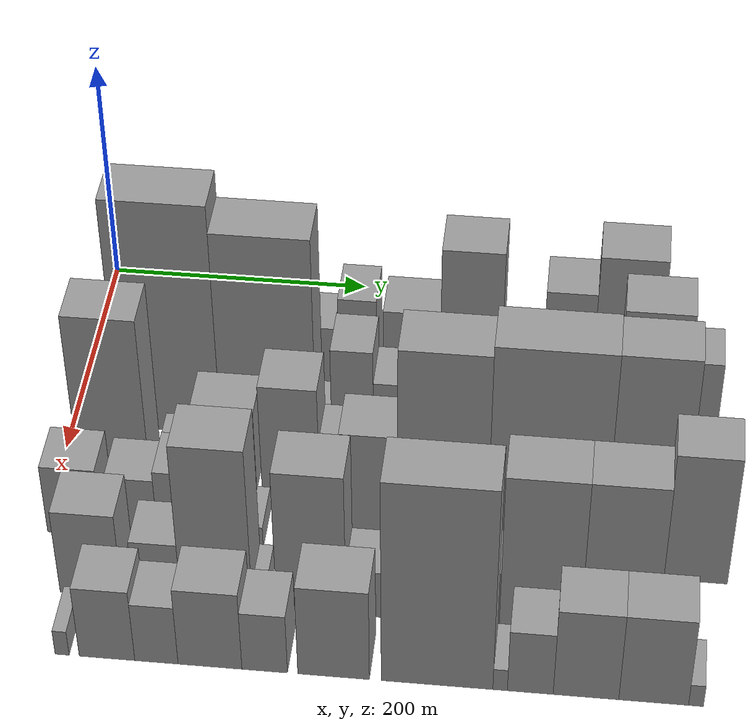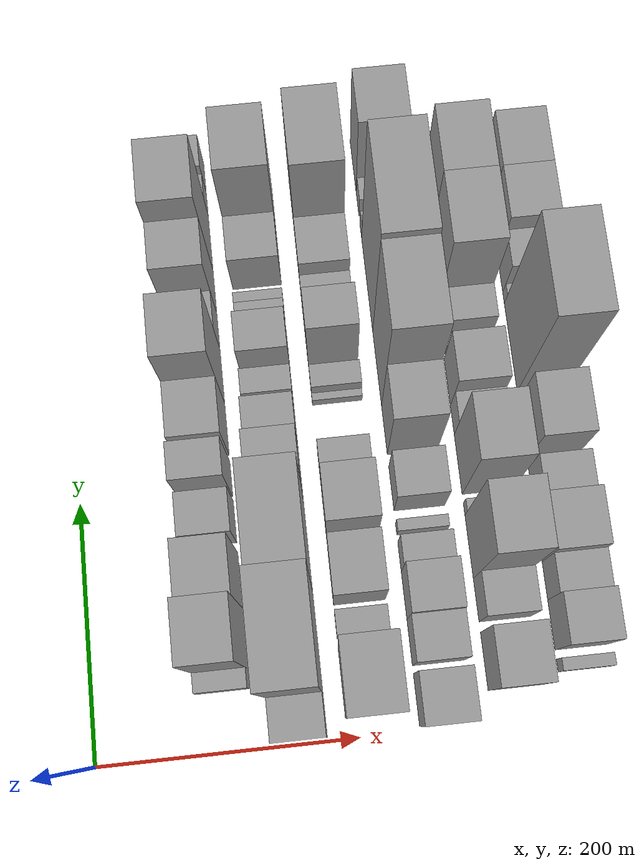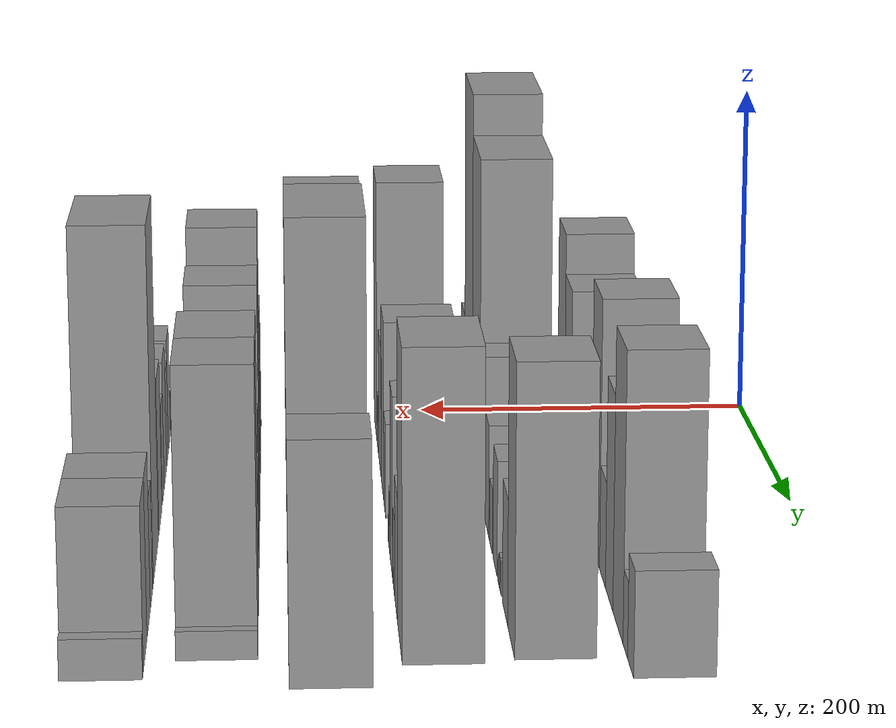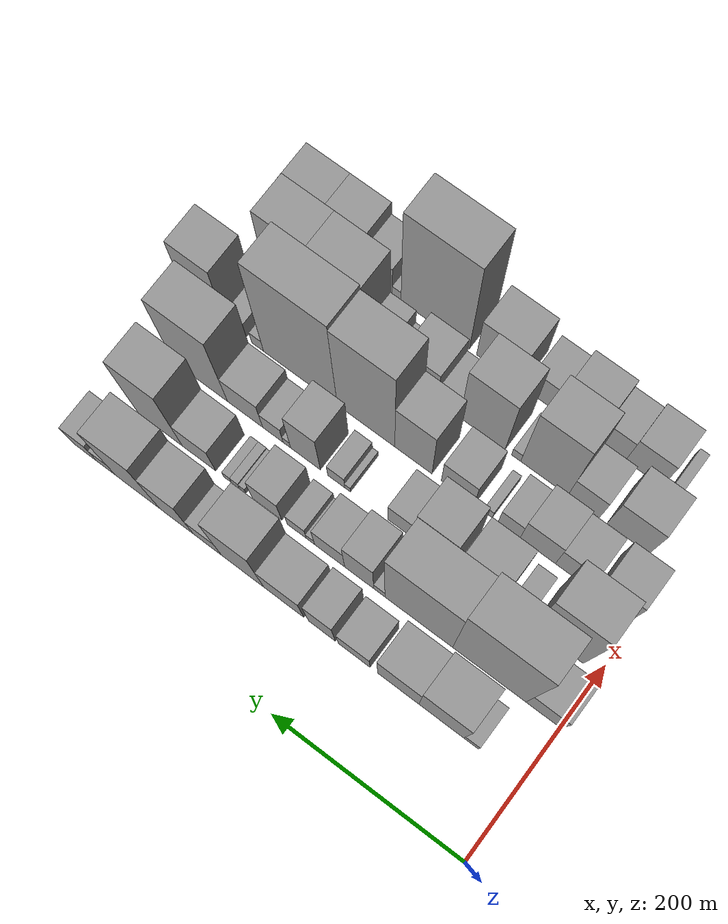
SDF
<sdf version="1.6">
 <world name="default">
  <model name="building_29">
   <static>1</static>
   <pose>100.0000 52.5139 0 0.000000 0.000000 0.000000</pose>
   <link name="link">
    <pose>0 0 15.00 0 0 0</pose>
    <collision name="collision"><geometry><box><size>40.0000 15.1052 30.0000</size></box></geometry></collision>
    <visual name="visual">
     <cast_shadows>0</cast_shadows>
     <geometry><box><size>40.0000 15.1052 30.0000</size></box></geometry>
     <material>
      <script>
       <uri>model://grey_wall/materials/scripts</uri>
       <uri>model://grey_wall/materials/textures</uri>
       <name>vrc/grey_wall</name>
      </script>
     </material>
    </visual>
   </link>
  </model>
  <model name="building_30">
   <static>1</static>
   <pose>100.0000 83.0617 0 0.000000 0.000000 0.000000</pose>
   <link name="link">
    <pose>0 0 67.50 0 0 0</pose>
    <collision name="collision"><geometry><box><size>40.0000 45.9904 135.0000</size></box></geometry></collision>
    <visual name="visual">
     <cast_shadows>0</cast_shadows>
     <geometry><box><size>40.0000 45.9904 135.0000</size></box></geometry>
     <material>
      <script>
       <uri>model://grey_wall/materials/scripts</uri>
       <uri>model://grey_wall/materials/textures</uri>
       <name>vrc/grey_wall</name>
      </script>
     </material>
    </visual>
   </link>
  </model>
  <model name="building_31">
   <static>1</static>
   <pose>100.0000 127.6087 0 0.000000 0.000000 0.000000</pose>
   <link name="link">
    <pose>0 0 55.50 0 0 0</pose>
    <collision name="collision"><geometry><box><size>40.0000 43.1036 111.0000</size></box></geometry></collision>
    <visual name="visual">
     <cast_shadows>0</cast_shadows>
     <geometry><box><size>40.0000 43.1036 111.0000</size></box></geometry>
     <material>
      <script>
       <uri>model://grey_wall/materials/scripts</uri>
       <uri>model://grey_wall/materials/textures</uri>
       <name>vrc/grey_wall</name>
      </script>
     </material>
    </visual>
   </link>
  </model>
  <model name="building_32">
   <static>1</static>
   <pose>100.0000 173.8281 0 0.000000 0.000000 0.000000</pose>
   <link name="link">
    <pose>0 0 31.50 0 0 0</pose>
    <collision name="collision"><geometry><box><size>40.0000 33.3352 63.0000</size></box></geometry></collision>
    <visual name="visual">
     <cast_shadows>0</cast_shadows>
     <geometry><box><size>40.0000 33.3352 63.0000</size></box></geometry>
     <material>
      <script>
       <uri>model://grey_wall/materials/scripts</uri>
       <uri>model://grey_wall/materials/textures</uri>
       <name>vrc/grey_wall</name>
      </script>
     </material>
    </visual>
   </link>
  </model>
  <model name="building_33">
   <static>1</static>
   <pose>100.0000 207.8353 0 0.000000 0.000000 0.000000</pose>
   <link name="link">
    <pose>0 0 46.50 0 0 0</pose>
    <collision name="collision"><geometry><box><size>40.0000 28.6792 93.0000</size></box></geometry></collision>
    <visual name="visual">
     <cast_shadows>0</cast_shadows>
     <geometry><box><size>40.0000 28.6792 93.0000</size></box></geometry>
     <material>
      <script>
       <uri>model://grey_wall/materials/scripts</uri>
       <uri>model://grey_wall/materials/textures</uri>
       <name>vrc/grey_wall</name>
      </script>
     </material>
    </visual>
   </link>
  </model>
  <model name="building_34">
   <static>1</static>
   <pose>100.0000 248.5474 0 0.000000 0.000000 0.000000</pose>
   <link name="link">
    <pose>0 0 42.00 0 0 0</pose>
    <collision name="collision"><geometry><box><size>40.0000 42.7449 84.0000</size></box></geometry></collision>
    <visual name="visual">
     <cast_shadows>0</cast_shadows>
     <geometry><box><size>40.0000 42.7449 84.0000</size></box></geometry>
     <material>
      <script>
       <uri>model://grey_wall/materials/scripts</uri>
       <uri>model://grey_wall/materials/textures</uri>
       <name>vrc/grey_wall</name>
      </script>
     </material>
    </visual>
   </link>
  </model>
  <model name="building_35">
   <static>1</static>
   <pose>100.0000 292.8291 0 0.000000 0.000000 0.000000</pose>
   <link name="link">
    <pose>0 0 73.50 0 0 0</pose>
    <collision name="collision"><geometry><box><size>40.0000 45.8186 147.0000</size></box></geometry></collision>
    <visual name="visual">
     <cast_shadows>0</cast_shadows>
     <geometry><box><size>40.0000 45.8186 147.0000</size></box></geometry>
     <material>
      <script>
       <uri>model://grey_wall/materials/scripts</uri>
       <uri>model://grey_wall/materials/textures</uri>
       <name>vrc/grey_wall</name>
      </script>
     </material>
    </visual>
   </link>
  </model>
  <model name="building_36">
   <static>1</static>
   <pose>100.0000 330.9853 0 0.000000 0.000000 0.000000</pose>
   <link name="link">
    <pose>0 0 28.50 0 0 0</pose>
    <collision name="collision"><geometry><box><size>40.0000 30.4937 57.0000</size></box></geometry></collision>
    <visual name="visual">
     <cast_shadows>0</cast_shadows>
     <geometry><box><size>40.0000 30.4937 57.0000</size></box></geometry>
     <material>
      <script>
       <uri>model://grey_wall/materials/scripts</uri>
       <uri>model://grey_wall/materials/textures</uri>
       <name>vrc/grey_wall</name>
      </script>
     </material>
    </visual>
   </link>
  </model>
  <model name="building_37">
   <static>1</static>
   <pose>100.0000 364.7827 0 0.000000 0.000000 0.000000</pose>
   <link name="link">
    <pose>0 0 57.00 0 0 0</pose>
    <collision name="collision"><geometry><box><size>40.0000 37.1011 114.0000</size></box></geometry></collision>
    <visual name="visual">
     <cast_shadows>0</cast_shadows>
     <geometry><box><size>40.0000 37.1011 114.0000</size></box></geometry>
     <material>
      <script>
       <uri>model://grey_wall/materials/scripts</uri>
       <uri>model://grey_wall/materials/textures</uri>
       <name>vrc/grey_wall</name>
      </script>
     </material>
    </visual>
   </link>
  </model>
  <model name="building_38">
   <static>1</static>
   <pose>100.0000 407.6640 0 0.000000 0.000000 0.000000</pose>
   <link name="link">
    <pose>0 0 75.00 0 0 0</pose>
    <collision name="collision"><geometry><box><size>40.0000 48.6615 150.0000</size></box></geometry></collision>
    <visual name="visual">
     <cast_shadows>0</cast_shadows>
     <geometry><box><size>40.0000 48.6615 150.0000</size></box></geometry>
     <material>
      <script>
       <uri>model://grey_wall/materials/scripts</uri>
       <uri>model://grey_wall/materials/textures</uri>
       <name>vrc/grey_wall</name>
      </script>
     </material>
    </visual>
   </link>
  </model>
  <model name="building_39">
   <static>1</static>
   <pose>100.0000 442.3935 0 0.000000 0.000000 0.000000</pose>
   <link name="link">
    <pose>0 0 19.50 0 0 0</pose>
    <collision name="collision"><geometry><box><size>40.0000 20.7976 39.0000</size></box></geometry></collision>
    <visual name="visual">
     <cast_shadows>0</cast_shadows>
     <geometry><box><size>40.0000 20.7976 39.0000</size></box></geometry>
     <material>
      <script>
       <uri>model://grey_wall/materials/scripts</uri>
       <uri>model://grey_wall/materials/textures</uri>
       <name>vrc/grey_wall</name>
      </script>
     </material>
    </visual>
   </link>
  </model>
  <model name="building_40">
   <static>1</static>
   <pose>100.0000 466.3088 0 0.000000 0.000000 0.000000</pose>
   <link name="link">
    <pose>0 0 27.00 0 0 0</pose>
    <collision name="collision"><geometry><box><size>40.0000 27.0331 54.0000</size></box></geometry></collision>
    <visual name="visual">
     <cast_shadows>0</cast_shadows>
     <geometry><box><size>40.0000 27.0331 54.0000</size></box></geometry>
     <material>
      <script>
       <uri>model://grey_wall/materials/scripts</uri>
       <uri>model://grey_wall/materials/textures</uri>
       <name>vrc/grey_wall</name>
      </script>
     </material>
    </visual>
   </link>
  </model>
  <model name="building_77">
   <static>1</static>
   <pose>155.0000 17.8826 0 0.000000 0.000000 0.000000</pose>
   <link name="link">
    <pose>0 0 34.50 0 0 0</pose>
    <collision name="collision"><geometry><box><size>40.0000 35.7725 69.0000</size></box></geometry></collision>
    <visual name="visual">
     <cast_shadows>0</cast_shadows>
     <geometry><box><size>40.0000 35.7725 69.0000</size></box></geometry>
     <material>
      <script>
       <uri>model://grey_wall/materials/scripts</uri>
       <uri>model://grey_wall/materials/textures</uri>
       <name>vrc/grey_wall</name>
      </script>
     </material>
    </visual>
   </link>
  </model>
  <model name="building_78">
   <static>1</static>
   <pose>155.0000 73.6876 0 0.000000 0.000000 0.000000</pose>
   <link name="link">
    <pose>0 0 109.50 0 0 0</pose>
    <collision name="collision"><geometry><box><size>40.0000 75.8374 219.0000</size></box></geometry></collision>
    <visual name="visual">
     <cast_shadows>0</cast_shadows>
     <geometry><box><size>40.0000 75.8374 219.0000</size></box></geometry>
     <material>
      <script>
       <uri>model://grey_wall/materials/scripts</uri>
       <uri>model://grey_wall/materials/textures</uri>
       <name>vrc/grey_wall</name>
      </script>
     </material>
    </visual>
   </link>
  </model>
  <model name="building_79">
   <static>1</static>
   <pose>155.0000 147.2306 0 0.000000 0.000000 0.000000</pose>
   <link name="link">
    <pose>0 0 97.50 0 0 0</pose>
    <collision name="collision"><geometry><box><size>40.0000 71.2486 195.0000</size></box></geometry></collision>
    <visual name="visual">
     <cast_shadows>0</cast_shadows>
     <geometry><box><size>40.0000 71.2486 195.0000</size></box></geometry>
     <material>
      <script>
       <uri>model://grey_wall/materials/scripts</uri>
       <uri>model://grey_wall/materials/textures</uri>
       <name>vrc/grey_wall</name>
      </script>
     </material>
    </visual>
   </link>
  </model>
  <model name="building_80">
   <static>1</static>
   <pose>155.0000 188.7575 0 0.000000 0.000000 0.000000</pose>
   <link name="link">
    <pose>0 0 12.00 0 0 0</pose>
    <collision name="collision"><geometry><box><size>40.0000 11.8053 24.0000</size></box></geometry></collision>
    <visual name="visual">
     <cast_shadows>0</cast_shadows>
     <geometry><box><size>40.0000 11.8053 24.0000</size></box></geometry>
     <material>
      <script>
       <uri>model://grey_wall/materials/scripts</uri>
       <uri>model://grey_wall/materials/textures</uri>
       <name>vrc/grey_wall</name>
      </script>
     </material>
    </visual>
   </link>
  </model>
  <model name="building_81">
   <static>1</static>
   <pose>155.0000 210.1403 0 0.000000 0.000000 0.000000</pose>
   <link name="link">
    <pose>0 0 46.50 0 0 0</pose>
    <collision name="collision"><geometry><box><size>40.0000 30.9602 93.0000</size></box></geometry></collision>
    <visual name="visual">
     <cast_shadows>0</cast_shadows>
     <geometry><box><size>40.0000 30.9602 93.0000</size></box></geometry>
     <material>
      <script>
       <uri>model://grey_wall/materials/scripts</uri>
       <uri>model://grey_wall/materials/textures</uri>
       <name>vrc/grey_wall</name>
      </script>
     </material>
    </visual>
   </link>
  </model>
  <model name="building_82">
   <static>1</static>
   <pose>155.0000 241.7593 0 0.000000 0.000000 0.000000</pose>
   <link name="link">
    <pose>0 0 31.50 0 0 0</pose>
    <collision name="collision"><geometry><box><size>40.0000 32.2778 63.0000</size></box></geometry></collision>
    <visual name="visual">
     <cast_shadows>0</cast_shadows>
     <geometry><box><size>40.0000 32.2778 63.0000</size></box></geometry>
     <material>
      <script>
       <uri>model://grey_wall/materials/scripts</uri>
       <uri>model://grey_wall/materials/textures</uri>
       <name>vrc/grey_wall</name>
      </script>
     </material>
    </visual>
   </link>
  </model>
  <model name="building_83">
   <static>1</static>
   <pose>155.0000 262.3826 0 0.000000 0.000000 0.000000</pose>
   <link name="link">
    <pose>0 0 9.00 0 0 0</pose>
    <collision name="collision"><geometry><box><size>40.0000 8.9688 18.0000</size></box></geometry></collision>
    <visual name="visual">
     <cast_shadows>0</cast_shadows>
     <geometry><box><size>40.0000 8.9688 18.0000</size></box></geometry>
     <material>
      <script>
       <uri>model://grey_wall/materials/scripts</uri>
       <uri>model://grey_wall/materials/textures</uri>
       <name>vrc/grey_wall</name>
      </script>
     </material>
    </visual>
   </link>
  </model>
  <model name="building_84">
   <static>1</static>
   <pose>155.0000 277.1066 0 0.000000 0.000000 0.000000</pose>
   <link name="link">
    <pose>0 0 18.00 0 0 0</pose>
    <collision name="collision"><geometry><box><size>40.0000 20.4792 36.0000</size></box></geometry></collision>
    <visual name="visual">
     <cast_shadows>0</cast_shadows>
     <geometry><box><size>40.0000 20.4792 36.0000</size></box></geometry>
     <material>
      <script>
       <uri>model://grey_wall/materials/scripts</uri>
       <uri>model://grey_wall/materials/textures</uri>
       <name>vrc/grey_wall</name>
      </script>
     </material>
    </visual>
   </link>
  </model>
  <model name="building_85">
   <static>1</static>
   <pose>155.0000 309.4111 0 0.000000 0.000000 0.000000</pose>
   <link name="link">
    <pose>0 0 31.50 0 0 0</pose>
    <collision name="collision"><geometry><box><size>40.0000 32.1298 63.0000</size></box></geometry></collision>
    <visual name="visual">
     <cast_shadows>0</cast_shadows>
     <geometry><box><size>40.0000 32.1298 63.0000</size></box></geometry>
     <material>
      <script>
       <uri>model://grey_wall/materials/scripts</uri>
       <uri>model://grey_wall/materials/textures</uri>
       <name>vrc/grey_wall</name>
      </script>
     </material>
    </visual>
   </link>
  </model>
  <model name="building_86">
   <static>1</static>
   <pose>155.0000 335.9000 0 0.000000 0.000000 0.000000</pose>
   <link name="link">
    <pose>0 0 7.50 0 0 0</pose>
    <collision name="collision"><geometry><box><size>40.0000 6.8479 15.0000</size></box></geometry></collision>
    <visual name="visual">
     <cast_shadows>0</cast_shadows>
     <geometry><box><size>40.0000 6.8479 15.0000</size></box></geometry>
     <material>
      <script>
       <uri>model://grey_wall/materials/scripts</uri>
       <uri>model://grey_wall/materials/textures</uri>
       <name>vrc/grey_wall</name>
      </script>
     </material>
    </visual>
   </link>
  </model>
  <model name="building_87">
   <static>1</static>
   <pose>155.0000 343.7761 0 0.000000 0.000000 0.000000</pose>
   <link name="link">
    <pose>0 0 9.00 0 0 0</pose>
    <collision name="collision"><geometry><box><size>40.0000 8.9042 18.0000</size></box></geometry></collision>
    <visual name="visual">
     <cast_shadows>0</cast_shadows>
     <geometry><box><size>40.0000 8.9042 18.0000</size></box></geometry>
     <material>
      <script>
       <uri>model://grey_wall/materials/scripts</uri>
       <uri>model://grey_wall/materials/textures</uri>
       <name>vrc/grey_wall</name>
      </script>
     </material>
    </visual>
   </link>
  </model>
  <model name="building_88">
   <static>1</static>
   <pose>155.0000 352.4520 0 0.000000 0.000000 0.000000</pose>
   <link name="link">
    <pose>0 0 9.00 0 0 0</pose>
    <collision name="collision"><geometry><box><size>40.0000 8.4478 18.0000</size></box></geometry></collision>
    <visual name="visual">
     <cast_shadows>0</cast_shadows>
     <geometry><box><size>40.0000 8.4478 18.0000</size></box></geometry>
     <material>
      <script>
       <uri>model://grey_wall/materials/scripts</uri>
       <uri>model://grey_wall/materials/textures</uri>
       <name>vrc/grey_wall</name>
      </script>
     </material>
    </visual>
   </link>
  </model>
  <model name="building_89">
   <static>1</static>
   <pose>155.0000 384.0610 0 0.000000 0.000000 0.000000</pose>
   <link name="link">
    <pose>0 0 33.00 0 0 0</pose>
    <collision name="collision"><geometry><box><size>40.0000 36.7701 66.0000</size></box></geometry></collision>
    <visual name="visual">
     <cast_shadows>0</cast_shadows>
     <geometry><box><size>40.0000 36.7701 66.0000</size></box></geometry>
     <material>
      <script>
       <uri>model://grey_wall/materials/scripts</uri>
       <uri>model://grey_wall/materials/textures</uri>
       <name>vrc/grey_wall</name>
      </script>
     </material>
    </visual>
   </link>
  </model>
  <model name="building_90">
   <static>1</static>
   <pose>155.0000 427.0287 0 0.000000 0.000000 0.000000</pose>
   <link name="link">
    <pose>0 0 75.00 0 0 0</pose>
    <collision name="collision"><geometry><box><size>40.0000 49.1653 150.0000</size></box></geometry></collision>
    <visual name="visual">
     <cast_shadows>0</cast_shadows>
     <geometry><box><size>40.0000 49.1653 150.0000</size></box></geometry>
     <material>
      <script>
       <uri>model://grey_wall/materials/scripts</uri>
       <uri>model://grey_wall/materials/textures</uri>
       <name>vrc/grey_wall</name>
      </script>
     </material>
    </visual>
   </link>
  </model>
  <model name="building_125">
   <static>1</static>
   <pose>210.0000 41.9455 0 0.000000 0.000000 0.000000</pose>
   <link name="link">
    <pose>0 0 79.50 0 0 0</pose>
    <collision name="collision"><geometry><box><size>40.0000 52.4761 159.0000</size></box></geometry></collision>
    <visual name="visual">
     <cast_shadows>0</cast_shadows>
     <geometry><box><size>40.0000 52.4761 159.0000</size></box></geometry>
     <material>
      <script>
       <uri>model://grey_wall/materials/scripts</uri>
       <uri>model://grey_wall/materials/textures</uri>
       <name>vrc/grey_wall</name>
      </script>
     </material>
    </visual>
   </link>
  </model>
  <model name="building_126">
   <static>1</static>
   <pose>210.0000 85.0455 0 0.000000 0.000000 0.000000</pose>
   <link name="link">
    <pose>0 0 16.50 0 0 0</pose>
    <collision name="collision"><geometry><box><size>40.0000 19.7239 33.0000</size></box></geometry></collision>
    <visual name="visual">
     <cast_shadows>0</cast_shadows>
     <geometry><box><size>40.0000 19.7239 33.0000</size></box></geometry>
     <material>
      <script>
       <uri>model://grey_wall/materials/scripts</uri>
       <uri>model://grey_wall/materials/textures</uri>
       <name>vrc/grey_wall</name>
      </script>
     </material>
    </visual>
   </link>
  </model>
  <model name="building_127">
   <static>1</static>
   <pose>210.0000 123.6763 0 0.000000 0.000000 0.000000</pose>
   <link name="link">
    <pose>0 0 39.00 0 0 0</pose>
    <collision name="collision"><geometry><box><size>40.0000 45.5378 78.0000</size></box></geometry></collision>
    <visual name="visual">
     <cast_shadows>0</cast_shadows>
     <geometry><box><size>40.0000 45.5378 78.0000</size></box></geometry>
     <material>
      <script>
       <uri>model://grey_wall/materials/scripts</uri>
       <uri>model://grey_wall/materials/textures</uri>
       <name>vrc/grey_wall</name>
      </script>
     </material>
    </visual>
   </link>
  </model>
  <model name="building_128">
   <static>1</static>
   <pose>210.0000 171.4161 0 0.000000 0.000000 0.000000</pose>
   <link name="link">
    <pose>0 0 52.50 0 0 0</pose>
    <collision name="collision"><geometry><box><size>40.0000 41.9418 105.0000</size></box></geometry></collision>
    <visual name="visual">
     <cast_shadows>0</cast_shadows>
     <geometry><box><size>40.0000 41.9418 105.0000</size></box></geometry>
     <material>
      <script>
       <uri>model://grey_wall/materials/scripts</uri>
       <uri>model://grey_wall/materials/textures</uri>
       <name>vrc/grey_wall</name>
      </script>
     </material>
    </visual>
   </link>
  </model>
  <model name="building_129">
   <static>1</static>
   <pose>210.0000 206.7017 0 0.000000 0.000000 0.000000</pose>
   <link name="link">
    <pose>0 0 27.00 0 0 0</pose>
    <collision name="collision"><geometry><box><size>40.0000 28.6295 54.0000</size></box></geometry></collision>
    <visual name="visual">
     <cast_shadows>0</cast_shadows>
     <geometry><box><size>40.0000 28.6295 54.0000</size></box></geometry>
     <material>
      <script>
       <uri>model://grey_wall/materials/scripts</uri>
       <uri>model://grey_wall/materials/textures</uri>
       <name>vrc/grey_wall</name>
      </script>
     </material>
    </visual>
   </link>
  </model>
  <model name="building_130">
   <static>1</static>
   <pose>210.0000 264.2033 0 0.000000 0.000000 0.000000</pose>
   <link name="link">
    <pose>0 0 7.50 0 0 0</pose>
    <collision name="collision"><geometry><box><size>40.0000 6.1246 15.0000</size></box></geometry></collision>
    <visual name="visual">
     <cast_shadows>0</cast_shadows>
     <geometry><box><size>40.0000 6.1246 15.0000</size></box></geometry>
     <material>
      <script>
       <uri>model://grey_wall/materials/scripts</uri>
       <uri>model://grey_wall/materials/textures</uri>
       <name>vrc/grey_wall</name>
      </script>
     </material>
    </visual>
   </link>
  </model>
  <model name="building_131">
   <static>1</static>
   <pose>210.0000 276.5284 0 0.000000 0.000000 0.000000</pose>
   <link name="link">
    <pose>0 0 16.50 0 0 0</pose>
    <collision name="collision"><geometry><box><size>40.0000 18.5256 33.0000</size></box></geometry></collision>
    <visual name="visual">
     <cast_shadows>0</cast_shadows>
     <geometry><box><size>40.0000 18.5256 33.0000</size></box></geometry>
     <material>
      <script>
       <uri>model://grey_wall/materials/scripts</uri>
       <uri>model://grey_wall/materials/textures</uri>
       <name>vrc/grey_wall</name>
      </script>
     </material>
    </visual>
   </link>
  </model>
  <model name="building_132">
   <static>1</static>
   <pose>210.0000 309.9984 0 0.000000 0.000000 0.000000</pose>
   <link name="link">
    <pose>0 0 49.50 0 0 0</pose>
    <collision name="collision"><geometry><box><size>40.0000 32.4144 99.0000</size></box></geometry></collision>
    <visual name="visual">
     <cast_shadows>0</cast_shadows>
     <geometry><box><size>40.0000 32.4144 99.0000</size></box></geometry>
     <material>
      <script>
       <uri>model://grey_wall/materials/scripts</uri>
       <uri>model://grey_wall/materials/textures</uri>
       <name>vrc/grey_wall</name>
      </script>
     </material>
    </visual>
   </link>
  </model>
  <model name="building_133">
   <static>1</static>
   <pose>210.0000 330.3408 0 0.000000 0.000000 0.000000</pose>
   <link name="link">
    <pose>0 0 9.00 0 0 0</pose>
    <collision name="collision"><geometry><box><size>40.0000 8.2704 18.0000</size></box></geometry></collision>
    <visual name="visual">
     <cast_shadows>0</cast_shadows>
     <geometry><box><size>40.0000 8.2704 18.0000</size></box></geometry>
     <material>
      <script>
       <uri>model://grey_wall/materials/scripts</uri>
       <uri>model://grey_wall/materials/textures</uri>
       <name>vrc/grey_wall</name>
      </script>
     </material>
    </visual>
   </link>
  </model>
  <model name="building_134">
   <static>1</static>
   <pose>210.0000 345.7050 0 0.000000 0.000000 0.000000</pose>
   <link name="link">
    <pose>0 0 21.00 0 0 0</pose>
    <collision name="collision"><geometry><box><size>40.0000 22.4581 42.0000</size></box></geometry></collision>
    <visual name="visual">
     <cast_shadows>0</cast_shadows>
     <geometry><box><size>40.0000 22.4581 42.0000</size></box></geometry>
     <material>
      <script>
       <uri>model://grey_wall/materials/scripts</uri>
       <uri>model://grey_wall/materials/textures</uri>
       <name>vrc/grey_wall</name>
      </script>
     </material>
    </visual>
   </link>
  </model>
  <model name="building_135">
   <static>1</static>
   <pose>210.0000 376.3959 0 0.000000 0.000000 0.000000</pose>
   <link name="link">
    <pose>0 0 33.00 0 0 0</pose>
    <collision name="collision"><geometry><box><size>40.0000 38.9238 66.0000</size></box></geometry></collision>
    <visual name="visual">
     <cast_shadows>0</cast_shadows>
     <geometry><box><size>40.0000 38.9238 66.0000</size></box></geometry>
     <material>
      <script>
       <uri>model://grey_wall/materials/scripts</uri>
       <uri>model://grey_wall/materials/textures</uri>
       <name>vrc/grey_wall</name>
      </script>
     </material>
    </visual>
   </link>
  </model>
  <model name="building_136">
   <static>1</static>
   <pose>210.0000 426.0237 0 0.000000 0.000000 0.000000</pose>
   <link name="link">
    <pose>0 0 79.50 0 0 0</pose>
    <collision name="collision"><geometry><box><size>40.0000 60.3318 159.0000</size></box></geometry></collision>
    <visual name="visual">
     <cast_shadows>0</cast_shadows>
     <geometry><box><size>40.0000 60.3318 159.0000</size></box></geometry>
     <material>
      <script>
       <uri>model://grey_wall/materials/scripts</uri>
       <uri>model://grey_wall/materials/textures</uri>
       <name>vrc/grey_wall</name>
      </script>
     </material>
    </visual>
   </link>
  </model>
  <model name="building_178">
   <static>1</static>
   <pose>265.0000 23.3437 0 0.000000 0.000000 0.000000</pose>
   <link name="link">
    <pose>0 0 33.00 0 0 0</pose>
    <collision name="collision"><geometry><box><size>40.0000 39.0437 66.0000</size></box></geometry></collision>
    <visual name="visual">
     <cast_shadows>0</cast_shadows>
     <geometry><box><size>40.0000 39.0437 66.0000</size></box></geometry>
     <material>
      <script>
       <uri>model://grey_wall/materials/scripts</uri>
       <uri>model://grey_wall/materials/textures</uri>
       <name>vrc/grey_wall</name>
      </script>
     </material>
    </visual>
   </link>
  </model>
  <model name="building_179">
   <static>1</static>
   <pose>265.0000 66.2562 0 0.000000 0.000000 0.000000</pose>
   <link name="link">
    <pose>0 0 30.00 0 0 0</pose>
    <collision name="collision"><geometry><box><size>40.0000 34.7813 60.0000</size></box></geometry></collision>
    <visual name="visual">
     <cast_shadows>0</cast_shadows>
     <geometry><box><size>40.0000 34.7813 60.0000</size></box></geometry>
     <material>
      <script>
       <uri>model://grey_wall/materials/scripts</uri>
       <uri>model://grey_wall/materials/textures</uri>
       <name>vrc/grey_wall</name>
      </script>
     </material>
    </visual>
   </link>
  </model>
  <model name="building_180">
   <static>1</static>
   <pose>265.0000 102.1321 0 0.000000 0.000000 0.000000</pose>
   <link name="link">
    <pose>0 0 34.50 0 0 0</pose>
    <collision name="collision"><geometry><box><size>40.0000 36.9703 69.0000</size></box></geometry></collision>
    <visual name="visual">
     <cast_shadows>0</cast_shadows>
     <geometry><box><size>40.0000 36.9703 69.0000</size></box></geometry>
     <material>
      <script>
       <uri>model://grey_wall/materials/scripts</uri>
       <uri>model://grey_wall/materials/textures</uri>
       <name>vrc/grey_wall</name>
      </script>
     </material>
    </visual>
   </link>
  </model>
  <model name="building_181">
   <static>1</static>
   <pose>265.0000 132.2702 0 0.000000 0.000000 0.000000</pose>
   <link name="link">
    <pose>0 0 22.50 0 0 0</pose>
    <collision name="collision"><geometry><box><size>40.0000 23.3059 45.0000</size></box></geometry></collision>
    <visual name="visual">
     <cast_shadows>0</cast_shadows>
     <geometry><box><size>40.0000 23.3059 45.0000</size></box></geometry>
     <material>
      <script>
       <uri>model://grey_wall/materials/scripts</uri>
       <uri>model://grey_wall/materials/textures</uri>
       <name>vrc/grey_wall</name>
      </script>
     </material>
    </visual>
   </link>
  </model>
  <model name="building_182">
   <static>1</static>
   <pose>265.0000 154.5119 0 0.000000 0.000000 0.000000</pose>
   <link name="link">
    <pose>0 0 10.50 0 0 0</pose>
    <collision name="collision"><geometry><box><size>40.0000 9.1776 21.0000</size></box></geometry></collision>
    <visual name="visual">
     <cast_shadows>0</cast_shadows>
     <geometry><box><size>40.0000 9.1776 21.0000</size></box></geometry>
     <material>
      <script>
       <uri>model://grey_wall/materials/scripts</uri>
       <uri>model://grey_wall/materials/textures</uri>
       <name>vrc/grey_wall</name>
      </script>
     </material>
    </visual>
   </link>
  </model>
  <model name="building_183">
   <static>1</static>
   <pose>265.0000 186.7774 0 0.000000 0.000000 0.000000</pose>
   <link name="link">
    <pose>0 0 31.50 0 0 0</pose>
    <collision name="collision"><geometry><box><size>40.0000 35.3532 63.0000</size></box></geometry></collision>
    <visual name="visual">
     <cast_shadows>0</cast_shadows>
     <geometry><box><size>40.0000 35.3532 63.0000</size></box></geometry>
     <material>
      <script>
       <uri>model://grey_wall/materials/scripts</uri>
       <uri>model://grey_wall/materials/textures</uri>
       <name>vrc/grey_wall</name>
      </script>
     </material>
    </visual>
   </link>
  </model>
  <model name="building_184">
   <static>1</static>
   <pose>265.0000 234.5608 0 0.000000 0.000000 0.000000</pose>
   <link name="link">
    <pose>0 0 60.00 0 0 0</pose>
    <collision name="collision"><geometry><box><size>40.0000 40.2136 120.0000</size></box></geometry></collision>
    <visual name="visual">
     <cast_shadows>0</cast_shadows>
     <geometry><box><size>40.0000 40.2136 120.0000</size></box></geometry>
     <material>
      <script>
       <uri>model://grey_wall/materials/scripts</uri>
       <uri>model://grey_wall/materials/textures</uri>
       <name>vrc/grey_wall</name>
      </script>
     </material>
    </visual>
   </link>
  </model>
  <model name="building_185">
   <static>1</static>
   <pose>265.0000 285.9932 0 0.000000 0.000000 0.000000</pose>
   <link name="link">
    <pose>0 0 100.50 0 0 0</pose>
    <collision name="collision"><geometry><box><size>40.0000 62.6513 201.0000</size></box></geometry></collision>
    <visual name="visual">
     <cast_shadows>0</cast_shadows>
     <geometry><box><size>40.0000 62.6513 201.0000</size></box></geometry>
     <material>
      <script>
       <uri>model://grey_wall/materials/scripts</uri>
       <uri>model://grey_wall/materials/textures</uri>
       <name>vrc/grey_wall</name>
      </script>
     </material>
    </visual>
   </link>
  </model>
  <model name="building_186">
   <static>1</static>
   <pose>265.0000 358.1445 0 0.000000 0.000000 0.000000</pose>
   <link name="link">
    <pose>0 0 105.00 0 0 0</pose>
    <collision name="collision"><geometry><box><size>40.0000 81.6512 210.0000</size></box></geometry></collision>
    <visual name="visual">
     <cast_shadows>0</cast_shadows>
     <geometry><box><size>40.0000 81.6512 210.0000</size></box></geometry>
     <material>
      <script>
       <uri>model://grey_wall/materials/scripts</uri>
       <uri>model://grey_wall/materials/textures</uri>
       <name>vrc/grey_wall</name>
      </script>
     </material>
    </visual>
   </link>
  </model>
  <model name="building_187">
   <static>1</static>
   <pose>265.0000 405.5779 0 0.000000 0.000000 0.000000</pose>
   <link name="link">
    <pose>0 0 13.50 0 0 0</pose>
    <collision name="collision"><geometry><box><size>40.0000 13.2157 27.0000</size></box></geometry></collision>
    <visual name="visual">
     <cast_shadows>0</cast_shadows>
     <geometry><box><size>40.0000 13.2157 27.0000</size></box></geometry>
     <material>
      <script>
       <uri>model://grey_wall/materials/scripts</uri>
       <uri>model://grey_wall/materials/textures</uri>
       <name>vrc/grey_wall</name>
      </script>
     </material>
    </visual>
   </link>
  </model>
  <model name="building_188">
   <static>1</static>
   <pose>265.0000 428.8843 0 0.000000 0.000000 0.000000</pose>
   <link name="link">
    <pose>0 0 16.50 0 0 0</pose>
    <collision name="collision"><geometry><box><size>40.0000 19.3971 33.0000</size></box></geometry></collision>
    <visual name="visual">
     <cast_shadows>0</cast_shadows>
     <geometry><box><size>40.0000 19.3971 33.0000</size></box></geometry>
     <material>
      <script>
       <uri>model://grey_wall/materials/scripts</uri>
       <uri>model://grey_wall/materials/textures</uri>
       <name>vrc/grey_wall</name>
      </script>
     </material>
    </visual>
   </link>
  </model>
  <model name="building_189">
   <static>1</static>
   <pose>265.0000 463.8488 0 0.000000 0.000000 0.000000</pose>
   <link name="link">
    <pose>0 0 61.50 0 0 0</pose>
    <collision name="collision"><geometry><box><size>40.0000 44.5318 123.0000</size></box></geometry></collision>
    <visual name="visual">
     <cast_shadows>0</cast_shadows>
     <geometry><box><size>40.0000 44.5318 123.0000</size></box></geometry>
     <material>
      <script>
       <uri>model://grey_wall/materials/scripts</uri>
       <uri>model://grey_wall/materials/textures</uri>
       <name>vrc/grey_wall</name>
      </script>
     </material>
    </visual>
   </link>
  </model>
  <model name="building_224">
   <static>1</static>
   <pose>320.0000 46.3474 0 0.000000 0.000000 0.000000</pose>
   <link name="link">
    <pose>0 0 40.50 0 0 0</pose>
    <collision name="collision"><geometry><box><size>40.0000 43.8651 81.0000</size></box></geometry></collision>
    <visual name="visual">
     <cast_shadows>0</cast_shadows>
     <geometry><box><size>40.0000 43.8651 81.0000</size></box></geometry>
     <material>
      <script>
       <uri>model://grey_wall/materials/scripts</uri>
       <uri>model://grey_wall/materials/textures</uri>
       <name>vrc/grey_wall</name>
      </script>
     </material>
    </visual>
   </link>
  </model>
  <model name="building_225">
   <static>1</static>
   <pose>320.0000 92.8470 0 0.000000 0.000000 0.000000</pose>
   <link name="link">
    <pose>0 0 28.50 0 0 0</pose>
    <collision name="collision"><geometry><box><size>40.0000 33.1341 57.0000</size></box></geometry></collision>
    <visual name="visual">
     <cast_shadows>0</cast_shadows>
     <geometry><box><size>40.0000 33.1341 57.0000</size></box></geometry>
     <material>
      <script>
       <uri>model://grey_wall/materials/scripts</uri>
       <uri>model://grey_wall/materials/textures</uri>
       <name>vrc/grey_wall</name>
      </script>
     </material>
    </visual>
   </link>
  </model>
  <model name="building_226">
   <static>1</static>
   <pose>320.0000 134.4624 0 0.000000 0.000000 0.000000</pose>
   <link name="link">
    <pose>0 0 76.50 0 0 0</pose>
    <collision name="collision"><geometry><box><size>40.0000 50.0967 153.0000</size></box></geometry></collision>
    <visual name="visual">
     <cast_shadows>0</cast_shadows>
     <geometry><box><size>40.0000 50.0967 153.0000</size></box></geometry>
     <material>
      <script>
       <uri>model://grey_wall/materials/scripts</uri>
       <uri>model://grey_wall/materials/textures</uri>
       <name>vrc/grey_wall</name>
      </script>
     </material>
    </visual>
   </link>
  </model>
  <model name="building_227">
   <static>1</static>
   <pose>320.0000 164.4455 0 0.000000 0.000000 0.000000</pose>
   <link name="link">
    <pose>0 0 10.50 0 0 0</pose>
    <collision name="collision"><geometry><box><size>40.0000 9.8694 21.0000</size></box></geometry></collision>
    <visual name="visual">
     <cast_shadows>0</cast_shadows>
     <geometry><box><size>40.0000 9.8694 21.0000</size></box></geometry>
     <material>
      <script>
       <uri>model://grey_wall/materials/scripts</uri>
       <uri>model://grey_wall/materials/textures</uri>
       <name>vrc/grey_wall</name>
      </script>
     </material>
    </visual>
   </link>
  </model>
  <model name="building_228">
   <static>1</static>
   <pose>320.0000 200.5421 0 0.000000 0.000000 0.000000</pose>
   <link name="link">
    <pose>0 0 67.50 0 0 0</pose>
    <collision name="collision"><geometry><box><size>40.0000 48.3239 135.0000</size></box></geometry></collision>
    <visual name="visual">
     <cast_shadows>0</cast_shadows>
     <geometry><box><size>40.0000 48.3239 135.0000</size></box></geometry>
     <material>
      <script>
       <uri>model://grey_wall/materials/scripts</uri>
       <uri>model://grey_wall/materials/textures</uri>
       <name>vrc/grey_wall</name>
      </script>
     </material>
    </visual>
   </link>
  </model>
  <model name="building_229">
   <static>1</static>
   <pose>320.0000 236.8170 0 0.000000 0.000000 0.000000</pose>
   <link name="link">
    <pose>0 0 22.50 0 0 0</pose>
    <collision name="collision"><geometry><box><size>40.0000 24.2259 45.0000</size></box></geometry></collision>
    <visual name="visual">
     <cast_shadows>0</cast_shadows>
     <geometry><box><size>40.0000 24.2259 45.0000</size></box></geometry>
     <material>
      <script>
       <uri>model://grey_wall/materials/scripts</uri>
       <uri>model://grey_wall/materials/textures</uri>
       <name>vrc/grey_wall</name>
      </script>
     </material>
    </visual>
   </link>
  </model>
  <model name="building_230">
   <static>1</static>
   <pose>320.0000 268.5896 0 0.000000 0.000000 0.000000</pose>
   <link name="link">
    <pose>0 0 37.50 0 0 0</pose>
    <collision name="collision"><geometry><box><size>40.0000 39.3193 75.0000</size></box></geometry></collision>
    <visual name="visual">
     <cast_shadows>0</cast_shadows>
     <geometry><box><size>40.0000 39.3193 75.0000</size></box></geometry>
     <material>
      <script>
       <uri>model://grey_wall/materials/scripts</uri>
       <uri>model://grey_wall/materials/textures</uri>
       <name>vrc/grey_wall</name>
      </script>
     </material>
    </visual>
   </link>
  </model>
  <model name="building_231">
   <static>1</static>
   <pose>320.0000 297.6039 0 0.000000 0.000000 0.000000</pose>
   <link name="link">
    <pose>0 0 12.00 0 0 0</pose>
    <collision name="collision"><geometry><box><size>40.0000 10.7092 24.0000</size></box></geometry></collision>
    <visual name="visual">
     <cast_shadows>0</cast_shadows>
     <geometry><box><size>40.0000 10.7092 24.0000</size></box></geometry>
     <material>
      <script>
       <uri>model://grey_wall/materials/scripts</uri>
       <uri>model://grey_wall/materials/textures</uri>
       <name>vrc/grey_wall</name>
      </script>
     </material>
    </visual>
   </link>
  </model>
  <model name="building_232">
   <static>1</static>
   <pose>320.0000 316.6450 0 0.000000 0.000000 0.000000</pose>
   <link name="link">
    <pose>0 0 27.00 0 0 0</pose>
    <collision name="collision"><geometry><box><size>40.0000 27.3729 54.0000</size></box></geometry></collision>
    <visual name="visual">
     <cast_shadows>0</cast_shadows>
     <geometry><box><size>40.0000 27.3729 54.0000</size></box></geometry>
     <material>
      <script>
       <uri>model://grey_wall/materials/scripts</uri>
       <uri>model://grey_wall/materials/textures</uri>
       <name>vrc/grey_wall</name>
      </script>
     </material>
    </visual>
   </link>
  </model>
  <model name="building_233">
   <static>1</static>
   <pose>320.0000 358.0714 0 0.000000 0.000000 0.000000</pose>
   <link name="link">
    <pose>0 0 73.50 0 0 0</pose>
    <collision name="collision"><geometry><box><size>40.0000 55.4801 147.0000</size></box></geometry></collision>
    <visual name="visual">
     <cast_shadows>0</cast_shadows>
     <geometry><box><size>40.0000 55.4801 147.0000</size></box></geometry>
     <material>
      <script>
       <uri>model://grey_wall/materials/scripts</uri>
       <uri>model://grey_wall/materials/textures</uri>
       <name>vrc/grey_wall</name>
      </script>
     </material>
    </visual>
   </link>
  </model>
  <model name="building_234">
   <static>1</static>
   <pose>320.0000 412.0061 0 0.000000 0.000000 0.000000</pose>
   <link name="link">
    <pose>0 0 73.50 0 0 0</pose>
    <collision name="collision"><geometry><box><size>40.0000 52.3892 147.0000</size></box></geometry></collision>
    <visual name="visual">
     <cast_shadows>0</cast_shadows>
     <geometry><box><size>40.0000 52.3892 147.0000</size></box></geometry>
     <material>
      <script>
       <uri>model://grey_wall/materials/scripts</uri>
       <uri>model://grey_wall/materials/textures</uri>
       <name>vrc/grey_wall</name>
      </script>
     </material>
    </visual>
   </link>
  </model>
  <model name="building_235">
   <static>1</static>
   <pose>320.0000 441.5109 0 0.000000 0.000000 0.000000</pose>
   <link name="link">
    <pose>0 0 7.50 0 0 0</pose>
    <collision name="collision"><geometry><box><size>40.0000 6.6205 15.0000</size></box></geometry></collision>
    <visual name="visual">
     <cast_shadows>0</cast_shadows>
     <geometry><box><size>40.0000 6.6205 15.0000</size></box></geometry>
     <material>
      <script>
       <uri>model://grey_wall/materials/scripts</uri>
       <uri>model://grey_wall/materials/textures</uri>
       <name>vrc/grey_wall</name>
      </script>
     </material>
    </visual>
   </link>
  </model>
  <model name="building_274">
   <static>1</static>
   <pose>375.0000 37.2499 0 0.000000 0.000000 0.000000</pose>
   <link name="link">
    <pose>0 0 12.00 0 0 0</pose>
    <collision name="collision"><geometry><box><size>40.0000 9.6245 24.0000</size></box></geometry></collision>
    <visual name="visual">
     <cast_shadows>0</cast_shadows>
     <geometry><box><size>40.0000 9.6245 24.0000</size></box></geometry>
     <material>
      <script>
       <uri>model://grey_wall/materials/scripts</uri>
       <uri>model://grey_wall/materials/textures</uri>
       <name>vrc/grey_wall</name>
      </script>
     </material>
    </visual>
   </link>
  </model>
  <model name="building_275">
   <static>1</static>
   <pose>375.0000 68.1338 0 0.000000 0.000000 0.000000</pose>
   <link name="link">
    <pose>0 0 34.50 0 0 0</pose>
    <collision name="collision"><geometry><box><size>40.0000 38.1433 69.0000</size></box></geometry></collision>
    <visual name="visual">
     <cast_shadows>0</cast_shadows>
     <geometry><box><size>40.0000 38.1433 69.0000</size></box></geometry>
     <material>
      <script>
       <uri>model://grey_wall/materials/scripts</uri>
       <uri>model://grey_wall/materials/textures</uri>
       <name>vrc/grey_wall</name>
      </script>
     </material>
    </visual>
   </link>
  </model>
  <model name="building_276">
   <static>1</static>
   <pose>375.0000 102.0283 0 0.000000 0.000000 0.000000</pose>
   <link name="link">
    <pose>0 0 28.50 0 0 0</pose>
    <collision name="collision"><geometry><box><size>40.0000 29.6456 57.0000</size></box></geometry></collision>
    <visual name="visual">
     <cast_shadows>0</cast_shadows>
     <geometry><box><size>40.0000 29.6456 57.0000</size></box></geometry>
     <material>
      <script>
       <uri>model://grey_wall/materials/scripts</uri>
       <uri>model://grey_wall/materials/textures</uri>
       <name>vrc/grey_wall</name>
      </script>
     </material>
    </visual>
   </link>
  </model>
  <model name="building_277">
   <static>1</static>
   <pose>375.0000 138.6402 0 0.000000 0.000000 0.000000</pose>
   <link name="link">
    <pose>0 0 37.50 0 0 0</pose>
    <collision name="collision"><geometry><box><size>40.0000 43.5783 75.0000</size></box></geometry></collision>
    <visual name="visual">
     <cast_shadows>0</cast_shadows>
     <geometry><box><size>40.0000 43.5783 75.0000</size></box></geometry>
     <material>
      <script>
       <uri>model://grey_wall/materials/scripts</uri>
       <uri>model://grey_wall/materials/textures</uri>
       <name>vrc/grey_wall</name>
      </script>
     </material>
    </visual>
   </link>
  </model>
  <model name="building_278">
   <static>1</static>
   <pose>375.0000 175.9245 0 0.000000 0.000000 0.000000</pose>
   <link name="link">
    <pose>0 0 28.50 0 0 0</pose>
    <collision name="collision"><geometry><box><size>40.0000 30.9903 57.0000</size></box></geometry></collision>
    <visual name="visual">
     <cast_shadows>0</cast_shadows>
     <geometry><box><size>40.0000 30.9903 57.0000</size></box></geometry>
     <material>
      <script>
       <uri>model://grey_wall/materials/scripts</uri>
       <uri>model://grey_wall/materials/textures</uri>
       <name>vrc/grey_wall</name>
      </script>
     </material>
    </visual>
   </link>
  </model>
  <model name="building_279">
   <static>1</static>
   <pose>375.0000 222.6636 0 0.000000 0.000000 0.000000</pose>
   <link name="link">
    <pose>0 0 43.50 0 0 0</pose>
    <collision name="collision"><geometry><box><size>40.0000 48.4878 87.0000</size></box></geometry></collision>
    <visual name="visual">
     <cast_shadows>0</cast_shadows>
     <geometry><box><size>40.0000 48.4878 87.0000</size></box></geometry>
     <material>
      <script>
       <uri>model://grey_wall/materials/scripts</uri>
       <uri>model://grey_wall/materials/textures</uri>
       <name>vrc/grey_wall</name>
      </script>
     </material>
    </visual>
   </link>
  </model>
  <model name="building_280">
   <static>1</static>
   <pose>375.0000 292.4628 0 0.000000 0.000000 0.000000</pose>
   <link name="link">
    <pose>0 0 96.00 0 0 0</pose>
    <collision name="collision"><geometry><box><size>40.0000 75.1106 192.0000</size></box></geometry></collision>
    <visual name="visual">
     <cast_shadows>0</cast_shadows>
     <geometry><box><size>40.0000 75.1106 192.0000</size></box></geometry>
     <material>
      <script>
       <uri>model://grey_wall/materials/scripts</uri>
       <uri>model://grey_wall/materials/textures</uri>
       <name>vrc/grey_wall</name>
      </script>
     </material>
    </visual>
   </link>
  </model>
  <model name="building_281">
   <static>1</static>
   <pose>375.0000 334.8740 0 0.000000 0.000000 0.000000</pose>
   <link name="link">
    <pose>0 0 10.50 0 0 0</pose>
    <collision name="collision"><geometry><box><size>40.0000 9.7119 21.0000</size></box></geometry></collision>
    <visual name="visual">
     <cast_shadows>0</cast_shadows>
     <geometry><box><size>40.0000 9.7119 21.0000</size></box></geometry>
     <material>
      <script>
       <uri>model://grey_wall/materials/scripts</uri>
       <uri>model://grey_wall/materials/textures</uri>
       <name>vrc/grey_wall</name>
      </script>
     </material>
    </visual>
   </link>
  </model>
  <model name="building_282">
   <static>1</static>
   <pose>375.0000 355.0434 0 0.000000 0.000000 0.000000</pose>
   <link name="link">
    <pose>0 0 30.00 0 0 0</pose>
    <collision name="collision"><geometry><box><size>40.0000 30.6269 60.0000</size></box></geometry></collision>
    <visual name="visual">
     <cast_shadows>0</cast_shadows>
     <geometry><box><size>40.0000 30.6269 60.0000</size></box></geometry>
     <material>
      <script>
       <uri>model://grey_wall/materials/scripts</uri>
       <uri>model://grey_wall/materials/textures</uri>
       <name>vrc/grey_wall</name>
      </script>
     </material>
    </visual>
   </link>
  </model>
  <model name="building_283">
   <static>1</static>
   <pose>375.0000 392.2228 0 0.000000 0.000000 0.000000</pose>
   <link name="link">
    <pose>0 0 42.00 0 0 0</pose>
    <collision name="collision"><geometry><box><size>40.0000 43.7318 84.0000</size></box></geometry></collision>
    <visual name="visual">
     <cast_shadows>0</cast_shadows>
     <geometry><box><size>40.0000 43.7318 84.0000</size></box></geometry>
     <material>
      <script>
       <uri>model://grey_wall/materials/scripts</uri>
       <uri>model://grey_wall/materials/textures</uri>
       <name>vrc/grey_wall</name>
      </script>
     </material>
    </visual>
   </link>
  </model>
  <model name="building_284">
   <static>1</static>
   <pose>375.0000 437.2485 0 0.000000 0.000000 0.000000</pose>
   <link name="link">
    <pose>0 0 42.00 0 0 0</pose>
    <collision name="collision"><geometry><box><size>40.0000 46.3196 84.0000</size></box></geometry></collision>
    <visual name="visual">
     <cast_shadows>0</cast_shadows>
     <geometry><box><size>40.0000 46.3196 84.0000</size></box></geometry>
     <material>
      <script>
       <uri>model://grey_wall/materials/scripts</uri>
       <uri>model://grey_wall/materials/textures</uri>
       <name>vrc/grey_wall</name>
      </script>
     </material>
    </visual>
   </link>
  </model>
  <model name="building_285">
   <static>1</static>
   <pose>375.0000 465.3500 0 0.000000 0.000000 0.000000</pose>
   <link name="link">
    <pose>0 0 10.50 0 0 0</pose>
    <collision name="collision"><geometry><box><size>40.0000 9.8834 21.0000</size></box></geometry></collision>
    <visual name="visual">
     <cast_shadows>0</cast_shadows>
     <geometry><box><size>40.0000 9.8834 21.0000</size></box></geometry>
     <material>
      <script>
       <uri>model://grey_wall/materials/scripts</uri>
       <uri>model://grey_wall/materials/textures</uri>
       <name>vrc/grey_wall</name>
      </script>
     </material>
    </visual>
   </link>
  </model>
 </world>
</sdf>
